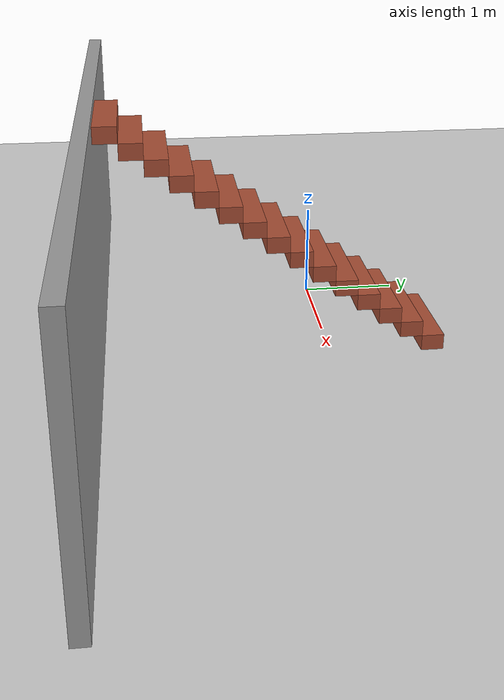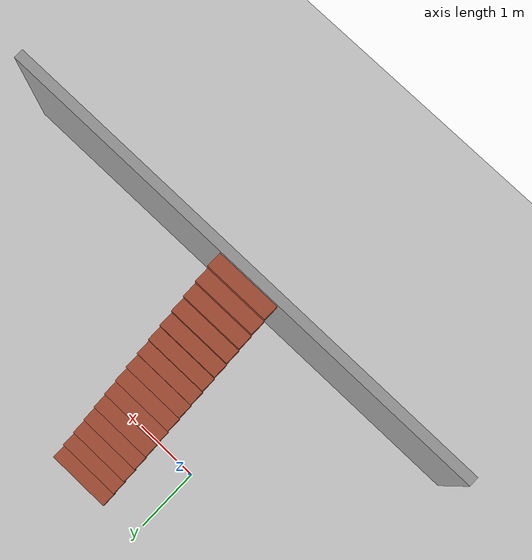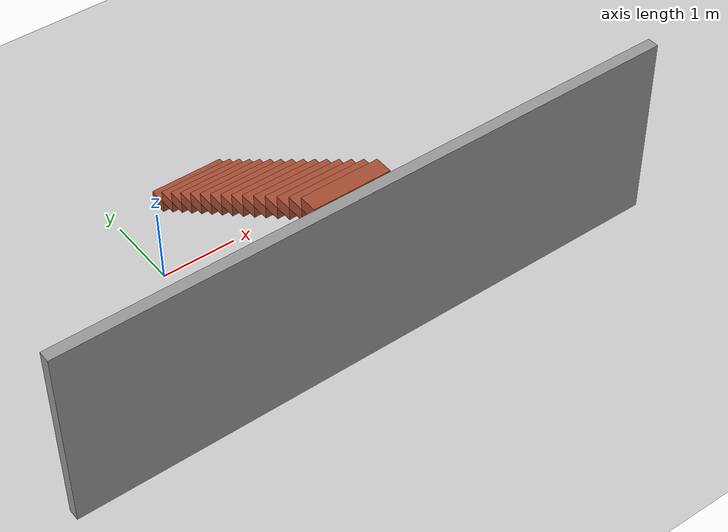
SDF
<sdf version="1.7">
 <world name="default">
  <light name="sun" type="directional">
   <pose>0 0 10 0 -0 0</pose>
   <diffuse>0.8 0.8 0.8 1</diffuse>
   <specular>0.2 0.2 0.2 1</specular>
   <attenuation>
    <range>1000</range>
    <constant>0.9</constant>
    <linear>0.01</linear>
    <quadratic>0.001</quadratic>
   </attenuation>
   <direction>-0.5 0.1 -0.9</direction>
   <spot><inner_angle>0</inner_angle><outer_angle>0</outer_angle><falloff>0</falloff></spot>
  </light>
  <model name="ground_plane">
   <static>1</static>
   <link name="link">
    <collision name="collision">
     <geometry><plane><normal>0 0 1</normal><size>100 100</size></plane></geometry>
     <surface>
      <contact><collide_bitmask>65535</collide_bitmask></contact>
      <friction><ode><mu>100</mu><mu2>50</mu2></ode></friction>
     </surface>
    </collision>
    <visual name="visual">
     <cast_shadows>0</cast_shadows>
     <geometry><plane><normal>0 0 1</normal><size>100 100</size></plane></geometry>
     <material>
      <script><uri>file://media/materials/scripts/gazebo.material</uri><name>Gazebo/Grey</name></script>
     </material>
    </visual>
   </link>
  </model>
  <gravity>0 0 -9.8</gravity>
  <magnetic_field>6e-06 2.3e-05 -4.2e-05</magnetic_field>
  <atmosphere type="adiabatic"/>
  <physics type="ode">
   <max_step_size>0.001</max_step_size>
   <real_time_factor>1</real_time_factor>
   <real_time_update_rate>1000</real_time_update_rate>
  </physics>
  <scene><ambient>0.4 0.4 0.4 1</ambient><background>0.7 0.7 0.7 1</background><shadows>1</shadows></scene>
  <spherical_coordinates>
   <surface_model>EARTH_WGS84</surface_model>
   <latitude_deg>0</latitude_deg>
   <longitude_deg>0</longitude_deg>
   <elevation>0</elevation>
   <heading_deg>0</heading_deg>
  </spherical_coordinates>
  <model name="test">
   <pose>1.3252 -3.2959 0 0 -0 0</pose>
   <link name="Stairs_0">
    <visual name="Stairs_0_Visual_0">
     <pose>-0.22763 4.35796 0.083333 0 -0 0</pose>
     <geometry><box><size>1 0.233333 0.166667</size></box></geometry>
     <material>
      <script><uri>file://media/materials/scripts/gazebo.material</uri><name>Gazebo/Bricks</name></script>
      <ambient>0.760784 0.662745 0.627451 1</ambient>
     </material>
     <meta><layer>0</layer></meta>
    </visual>
    <collision name="Stairs_0_Collision_0">
     <geometry><box><size>1 0.233333 0.166667</size></box></geometry>
     <pose>-0.22763 4.35796 0.083333 0 -0 0</pose>
    </collision>
    <visual name="Stairs_0_Visual_1">
     <pose>-0.22763 4.12462 0.25 0 -0 0</pose>
     <geometry><box><size>1 0.233333 0.166667</size></box></geometry>
     <material>
      <script><uri>file://media/materials/scripts/gazebo.material</uri><name>Gazebo/Bricks</name></script>
      <ambient>0.760784 0.662745 0.627451 1</ambient>
     </material>
     <meta><layer>0</layer></meta>
    </visual>
    <collision name="Stairs_0_Collision_1">
     <geometry><box><size>1 0.233333 0.166667</size></box></geometry>
     <pose>-0.22763 4.12462 0.25 0 -0 0</pose>
    </collision>
    <visual name="Stairs_0_Visual_2">
     <pose>-0.22763 3.89129 0.416667 0 -0 0</pose>
     <geometry><box><size>1 0.233333 0.166667</size></box></geometry>
     <material>
      <script><uri>file://media/materials/scripts/gazebo.material</uri><name>Gazebo/Bricks</name></script>
      <ambient>0.760784 0.662745 0.627451 1</ambient>
     </material>
     <meta><layer>0</layer></meta>
    </visual>
    <collision name="Stairs_0_Collision_2">
     <geometry><box><size>1 0.233333 0.166667</size></box></geometry>
     <pose>-0.22763 3.89129 0.416667 0 -0 0</pose>
    </collision>
    <visual name="Stairs_0_Visual_3">
     <pose>-0.22763 3.65796 0.583333 0 -0 0</pose>
     <geometry><box><size>1 0.233333 0.166667</size></box></geometry>
     <material>
      <script><uri>file://media/materials/scripts/gazebo.material</uri><name>Gazebo/Bricks</name></script>
      <ambient>0.760784 0.662745 0.627451 1</ambient>
     </material>
     <meta><layer>0</layer></meta>
    </visual>
    <collision name="Stairs_0_Collision_3">
     <geometry><box><size>1 0.233333 0.166667</size></box></geometry>
     <pose>-0.22763 3.65796 0.583333 0 -0 0</pose>
    </collision>
    <visual name="Stairs_0_Visual_4">
     <pose>-0.22763 3.42462 0.75 0 -0 0</pose>
     <geometry><box><size>1 0.233333 0.166667</size></box></geometry>
     <material>
      <script><uri>file://media/materials/scripts/gazebo.material</uri><name>Gazebo/Bricks</name></script>
      <ambient>0.760784 0.662745 0.627451 1</ambient>
     </material>
     <meta><layer>0</layer></meta>
    </visual>
    <collision name="Stairs_0_Collision_4">
     <geometry><box><size>1 0.233333 0.166667</size></box></geometry>
     <pose>-0.22763 3.42462 0.75 0 -0 0</pose>
    </collision>
    <visual name="Stairs_0_Visual_5">
     <pose>-0.22763 3.19129 0.916667 0 -0 0</pose>
     <geometry><box><size>1 0.233333 0.166667</size></box></geometry>
     <material>
      <script><uri>file://media/materials/scripts/gazebo.material</uri><name>Gazebo/Bricks</name></script>
      <ambient>0.760784 0.662745 0.627451 1</ambient>
     </material>
     <meta><layer>0</layer></meta>
    </visual>
    <collision name="Stairs_0_Collision_5">
     <geometry><box><size>1 0.233333 0.166667</size></box></geometry>
     <pose>-0.22763 3.19129 0.916667 0 -0 0</pose>
    </collision>
    <visual name="Stairs_0_Visual_6">
     <pose>-0.22763 2.95796 1.08333 0 -0 0</pose>
     <geometry><box><size>1 0.233333 0.166667</size></box></geometry>
     <material>
      <script><uri>file://media/materials/scripts/gazebo.material</uri><name>Gazebo/Bricks</name></script>
      <ambient>0.760784 0.662745 0.627451 1</ambient>
     </material>
     <meta><layer>0</layer></meta>
    </visual>
    <collision name="Stairs_0_Collision_6">
     <geometry><box><size>1 0.233333 0.166667</size></box></geometry>
     <pose>-0.22763 2.95796 1.08333 0 -0 0</pose>
    </collision>
    <visual name="Stairs_0_Visual_7">
     <pose>-0.22763 2.72463 1.25 0 -0 0</pose>
     <geometry><box><size>1 0.233333 0.166667</size></box></geometry>
     <material>
      <script><uri>file://media/materials/scripts/gazebo.material</uri><name>Gazebo/Bricks</name></script>
      <ambient>0.760784 0.662745 0.627451 1</ambient>
     </material>
     <meta><layer>0</layer></meta>
    </visual>
    <collision name="Stairs_0_Collision_7">
     <geometry><box><size>1 0.233333 0.166667</size></box></geometry>
     <pose>-0.22763 2.72463 1.25 0 -0 0</pose>
    </collision>
    <visual name="Stairs_0_Visual_8">
     <pose>-0.22763 2.49129 1.41667 0 -0 0</pose>
     <geometry><box><size>1 0.233333 0.166667</size></box></geometry>
     <material>
      <script><uri>file://media/materials/scripts/gazebo.material</uri><name>Gazebo/Bricks</name></script>
      <ambient>0.760784 0.662745 0.627451 1</ambient>
     </material>
     <meta><layer>0</layer></meta>
    </visual>
    <collision name="Stairs_0_Collision_8">
     <geometry><box><size>1 0.233333 0.166667</size></box></geometry>
     <pose>-0.22763 2.49129 1.41667 0 -0 0</pose>
    </collision>
    <visual name="Stairs_0_Visual_9">
     <pose>-0.22763 2.25796 1.58333 0 -0 0</pose>
     <geometry><box><size>1 0.233333 0.166667</size></box></geometry>
     <material>
      <script><uri>file://media/materials/scripts/gazebo.material</uri><name>Gazebo/Bricks</name></script>
      <ambient>0.760784 0.662745 0.627451 1</ambient>
     </material>
     <meta><layer>0</layer></meta>
    </visual>
    <collision name="Stairs_0_Collision_9">
     <geometry><box><size>1 0.233333 0.166667</size></box></geometry>
     <pose>-0.22763 2.25796 1.58333 0 -0 0</pose>
    </collision>
    <visual name="Stairs_0_Visual_10">
     <pose>-0.22763 2.02462 1.75 0 -0 0</pose>
     <geometry><box><size>1 0.233333 0.166667</size></box></geometry>
     <material>
      <script><uri>file://media/materials/scripts/gazebo.material</uri><name>Gazebo/Bricks</name></script>
      <ambient>0.760784 0.662745 0.627451 1</ambient>
     </material>
     <meta><layer>0</layer></meta>
    </visual>
    <collision name="Stairs_0_Collision_10">
     <geometry><box><size>1 0.233333 0.166667</size></box></geometry>
     <pose>-0.22763 2.02462 1.75 0 -0 0</pose>
    </collision>
    <visual name="Stairs_0_Visual_11">
     <pose>-0.22763 1.79129 1.91667 0 -0 0</pose>
     <geometry><box><size>1 0.233333 0.166667</size></box></geometry>
     <material>
      <script><uri>file://media/materials/scripts/gazebo.material</uri><name>Gazebo/Bricks</name></script>
      <ambient>0.760784 0.662745 0.627451 1</ambient>
     </material>
     <meta><layer>0</layer></meta>
    </visual>
    <collision name="Stairs_0_Collision_11">
     <geometry><box><size>1 0.233333 0.166667</size></box></geometry>
     <pose>-0.22763 1.79129 1.91667 0 -0 0</pose>
    </collision>
    <visual name="Stairs_0_Visual_12">
     <pose>-0.22763 1.55796 2.08333 0 -0 0</pose>
     <geometry><box><size>1 0.233333 0.166667</size></box></geometry>
     <material>
      <script><uri>file://media/materials/scripts/gazebo.material</uri><name>Gazebo/Bricks</name></script>
      <ambient>0.760784 0.662745 0.627451 1</ambient>
     </material>
     <meta><layer>0</layer></meta>
    </visual>
    <collision name="Stairs_0_Collision_12">
     <geometry><box><size>1 0.233333 0.166667</size></box></geometry>
     <pose>-0.22763 1.55796 2.08333 0 -0 0</pose>
    </collision>
    <visual name="Stairs_0_Visual_13">
     <pose>-0.22763 1.32462 2.25 0 -0 0</pose>
     <geometry><box><size>1 0.233333 0.166667</size></box></geometry>
     <material>
      <script><uri>file://media/materials/scripts/gazebo.material</uri><name>Gazebo/Bricks</name></script>
      <ambient>0.760784 0.662745 0.627451 1</ambient>
     </material>
     <meta><layer>0</layer></meta>
    </visual>
    <collision name="Stairs_0_Collision_13">
     <geometry><box><size>1 0.233333 0.166667</size></box></geometry>
     <pose>-0.22763 1.32462 2.25 0 -0 0</pose>
    </collision>
    <visual name="Stairs_0_Visual_14">
     <pose>-0.22763 1.09129 2.41667 0 -0 0</pose>
     <geometry><box><size>1 0.233333 0.166667</size></box></geometry>
     <material>
      <script><uri>file://media/materials/scripts/gazebo.material</uri><name>Gazebo/Bricks</name></script>
      <ambient>0.760784 0.662745 0.627451 1</ambient>
     </material>
     <meta><layer>0</layer></meta>
    </visual>
    <collision name="Stairs_0_Collision_14">
     <geometry><box><size>1 0.233333 0.166667</size></box></geometry>
     <pose>-0.22763 1.09129 2.41667 0 -0 0</pose>
    </collision>
   </link>
   <link name="Wall_0">
    <collision name="Wall_0_Collision">
     <geometry><box><size>8 0.15 2.5</size></box></geometry>
     <pose>0 0 1.25 0 -0 0</pose>
    </collision>
    <visual name="Wall_0_Visual">
     <pose>0 0 1.25 0 -0 0</pose>
     <geometry><box><size>8 0.15 2.5</size></box></geometry>
     <material>
      <script><uri>file://media/materials/scripts/gazebo.material</uri><name>Gazebo/Grey</name></script>
      <ambient>1 1 1 1</ambient>
     </material>
     <meta><layer>0</layer></meta>
    </visual>
    <pose>-0 0.885198 0 0 -0 3.14159</pose>
   </link>
   <static>1</static>
  </model>
 </world>
</sdf>
